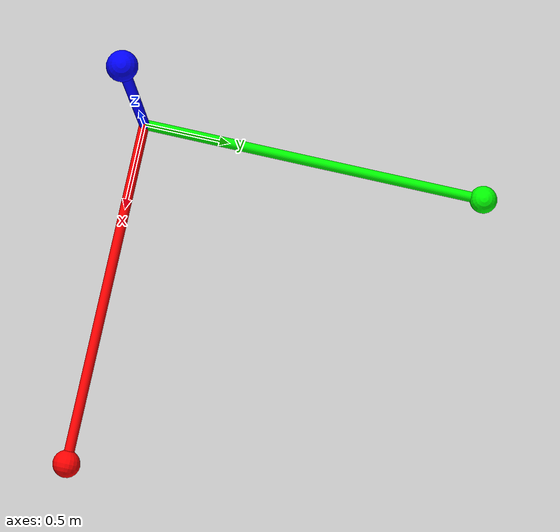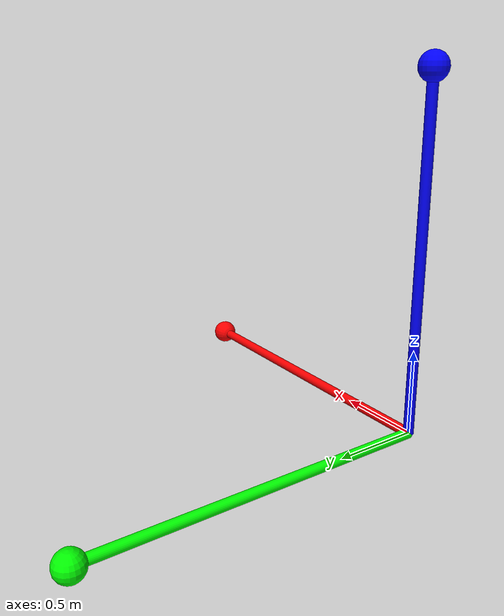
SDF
<?xml version="1.0"?>
<!-- Visual-only world coordinate triad at the origin.
     X = red (+forward), Y = green (+left), Z = blue (+up). Each 2 m long. -->
<sdf version="1.8">
  <model name="world_axes">
    <static>true</static>
    <link name="axes">
      <!-- X axis (red): cylinder rotated +90deg about Y, shifted +1 in X -->
      <visual name="x_axis">
        <pose>1 0 0 0 1.5708 0</pose>
        <geometry><cylinder><radius>0.03</radius><length>2.0</length></cylinder></geometry>
        <material><ambient>1 0 0 1</ambient><diffuse>1 0 0 1</diffuse><emissive>0.5 0 0 1</emissive></material>
      </visual>
      <visual name="x_tip">
        <pose>2 0 0 0 1.5708 0</pose>
        <geometry><sphere><radius>0.08</radius></sphere></geometry>
        <material><ambient>1 0 0 1</ambient><diffuse>1 0 0 1</diffuse><emissive>0.6 0 0 1</emissive></material>
      </visual>

      <!-- Y axis (green): cylinder rotated -90deg about X, shifted +1 in Y -->
      <visual name="y_axis">
        <pose>0 1 0 -1.5708 0 0</pose>
        <geometry><cylinder><radius>0.03</radius><length>2.0</length></cylinder></geometry>
        <material><ambient>0 1 0 1</ambient><diffuse>0 1 0 1</diffuse><emissive>0 0.5 0 1</emissive></material>
      </visual>
      <visual name="y_tip">
        <pose>0 2 0 0 0 0</pose>
        <geometry><sphere><radius>0.08</radius></sphere></geometry>
        <material><ambient>0 1 0 1</ambient><diffuse>0 1 0 1</diffuse><emissive>0 0.6 0 1</emissive></material>
      </visual>

      <!-- Z axis (blue): vertical cylinder, shifted +1 in Z -->
      <visual name="z_axis">
        <pose>0 0 1 0 0 0</pose>
        <geometry><cylinder><radius>0.03</radius><length>2.0</length></cylinder></geometry>
        <material><ambient>0 0 1 1</ambient><diffuse>0 0 1 1</diffuse><emissive>0 0 0.5 1</emissive></material>
      </visual>
      <visual name="z_tip">
        <pose>0 0 2 0 0 0</pose>
        <geometry><sphere><radius>0.08</radius></sphere></geometry>
        <material><ambient>0 0 1 1</ambient><diffuse>0 0 1 1</diffuse><emissive>0 0 0.6 1</emissive></material>
      </visual>
    </link>
  </model>
</sdf>
